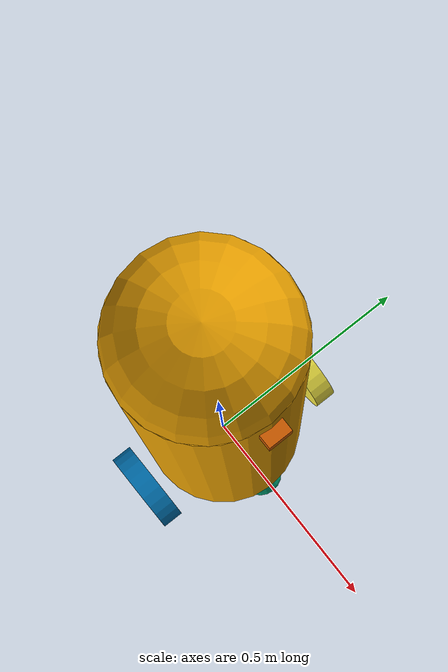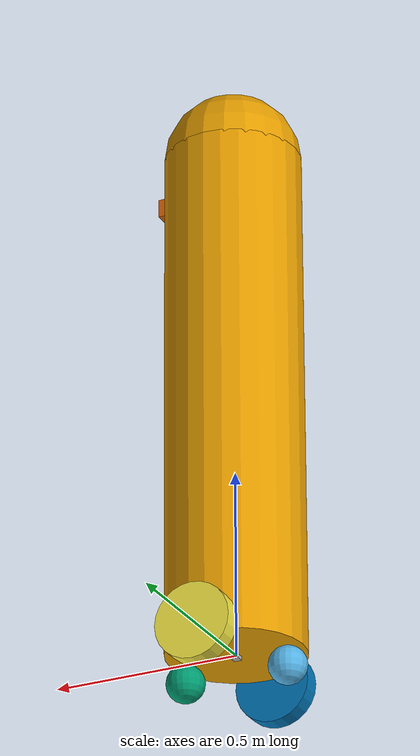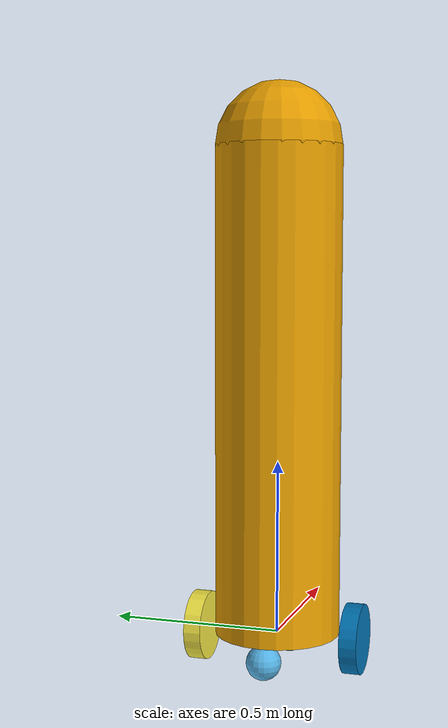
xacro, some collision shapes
<?xml version="1.0"?>
<robot name="museum_navigator_robot"
	xmlns:xacro="http://www.ros.org/wiki/xacro">
	<xacro:property name="cameraSize" value="0.05" />
	<xacro:property name="cameraMass" value="0.1" />

	<material name="black">
		<color rgba="0.0 0.0 0.0 1.0"/>
	</material>

	<material name="blue">
		<color rgba="0.0 0.0 0.8 1.0"/>
	</material>

	<material name="green">
		<color rgba="0.0 0.8 0.0 1.0"/>
	</material>

	<material name="grey">
		<color rgba="0.2 0.2 0.2 1.0"/>
	</material>

	<material name="orange">
		<color rgba="${255/255} ${108/255} ${10/255} 1.0"/>
	</material>

	<material name="brown">
		<color rgba="${222/255} ${207/255} ${195/255} 1.0"/>
	</material>

	<material name="red">
		<color rgba="0.8 0.0 0.0 1.0"/>
	</material>

	<material name="white">
		<color rgba="1.0 1.0 1.0 1.0"/>
	</material>
	<gazebo>
		<plugin filename="libgazebo_ros_joint_state_publisher.so" name="joint_state_publisher">
			<jointName>left_wheel_hinge, right_wheel_hinge</jointName>
			<updateRate>10.0</updateRate>
			<alwaysOn>true</alwaysOn>
		</plugin>
		<plugin name="differential_drive_controller" filename="libgazebo_ros_diff_drive.so">
			<legacyMode>false</legacyMode>
			<alwaysOn>true</alwaysOn>
			<updateRate>10</updateRate>
			<leftJoint>left_wheel_hinge</leftJoint>
			<rightJoint>right_wheel_hinge</rightJoint>
			<wheelSeparation>0.4</wheelSeparation>
			<wheelDiameter>0.2</wheelDiameter>
			<torque>10</torque>
			<commandTopic>cmd_vel</commandTopic>
			<odometryTopic>odom</odometryTopic>
			<odometryFrame>odom</odometryFrame>
			<robotBaseFrame>chassis</robotBaseFrame>
		</plugin>
	</gazebo>
	<gazebo reference="chassis">
		<material name="orange"/>
	</gazebo>
	<gazebo reference="front_caster">
		<mu1>0.0</mu1>
		<mu2>0.0</mu2>
		<material name="grey"/>
	</gazebo>
	<gazebo reference="back_caster">
		<mu1>0.0</mu1>
		<mu2>0.0</mu2>
		<material name="grey"/>
	</gazebo>
	<gazebo reference="left_wheel">
		<material name="black"/>
	</gazebo>
	<gazebo reference="right_wheel">
		<material name="black"/>
	</gazebo>
	<gazebo reference="camera">
		<material name="black"/>
		<sensor type="camera" name="camera1">
			<update_rate>30.0</update_rate>
			<alwaysOn>	true  </alwaysOn>
			<camera name="head_cam">
				<horizontal_fov>	1.62634  </horizontal_fov>
				<image>
					<width>1024</width>
					<height>720</height>
					<format>R8G8B8</format>
				</image>
				<clip>
					<near>0.02</near>
					<far>300</far>
				</clip>
			</camera>
			<plugin name="camera_controller" filename="libgazebo_ros_camera.so">
				<cameraName>	museum_nav/camera1  </cameraName>
				<imageTopicName>	image_raw  </imageTopicName>
				<cameraInfoTopicName>	camera_info  </cameraInfoTopicName>
				<frameName>	camera  </frameName>
				<hackBaseline>	0.07  </hackBaseline>
				<distortionK1>	0.0  </distortionK1>
				<distortionK2>	0.0  </distortionK2>
				<distortionK3>	0.0  </distortionK3>
				<distortionT1>	0.0  </distortionT1>
				<distortionT2>	0.0  </distortionT2>
			</plugin>
		</sensor>
	</gazebo>	<!-- hokuyo -->
	<gazebo reference="hokuyo">
		<sensor type="gpu_ray" name="head_hokuyo_sensor">
			<pose>0 0 0 0 0 0</pose>
			<visualize>true</visualize>
			<update_rate>40</update_rate>
			<ray>
				<scan>
					<horizontal>
						<samples>360</samples>
						<resolution>1</resolution>
						<min_angle>-3.14159</min_angle>
						<max_angle>3.14159</max_angle>
					</horizontal>
				</scan>
				<range>
					<min>		0.25</min>
					<max>		30.0</max>
					<resolution>		0.01</resolution>
				</range>
				<noise>
					<type>		gaussian</type>
					<mean>		0.0</mean>
					<stddev>		0.001</stddev>
				</noise>
			</ray>
			<plugin name="gazebo_ros_head_hokuyo_controller" filename="libgazebo_ros_gpu_laser.so">
				<topicName>	/museum_nav/laser/scan  </topicName>
				<frameName>	hokuyo  </frameName>
			</plugin>
		</sensor>
	</gazebo>
	<gazebo reference="imu_sensor">
		<material name="green"/>
		<gravity>true</gravity>
		<sensor name="imu_sensor" type="imu">
			<always_on>1</always_on>
			<update_rate>1000</update_rate>
			<visualize>1</visualize>
			<topic>__default_topic__</topic>
			<plugin name="imu_plugin" filename="libgazebo_ros_imu_sensor.so">
				<topicName>	imu_data  </topicName>
				<frameName>	imu_sensor  </frameName>
				<bodyName>	imu_sensor  </bodyName>
				<updateRateHZ>	100.0  </updateRateHZ>
				<gaussianNoise>	0.0  </gaussianNoise>
				<xyzOffset>	0 0 0  </xyzOffset>
				<rpyOffset>	0 0 0  </rpyOffset>
			</plugin>
			<pose>0 0 0 0 0 0</pose>
		</sensor>
	</gazebo>
	<gazebo reference="gps">
		<material name="green"/>
		<gravity>true</gravity>
		<sensor name="gps" type="gps">
			<always_on>1</always_on>
			<update_rate>5</update_rate>
			<visualize>1</visualize>
			<topic>__default_topic__</topic>
			<plugin filename="libhector_gazebo_ros_gps.so" name="novatel_gps_sim">
				<bodyName>gps</bodyName>
				<topicName>fix</topicName>
				<velocityTopicName>fix_velocity</velocityTopicName>
				<frameId>gps</frameId>
				<drift>0.0 0.0 0.0</drift>
				<gaussianNoise>0.001 0.001 0.001</gaussianNoise>
				<velocityDrift>0 0 0</velocityDrift>
				<velocityGaussianNoise>0.001 0.001 0.001</velocityGaussianNoise>
				<referenceLatitude>0.0</referenceLatitude>
				<referenceLongitude>0.0</referenceLongitude>
				<referenceHeading>0</referenceHeading>
			</plugin>
			<pose>0 0 0 0 0 0</pose>
		</sensor>
	</gazebo>
	<link name="chassis">
		<pose>
			0 0 0.1 0 0 0
		</pose>
		<collision name="collision">
			<origin xyz="0 0 0" rpy=" 0 0 0" />
			<geometry>
				<box size=".28 .28 .1" />
			</geometry>
		</collision>
		<visual name="chassis_visual">
			<origin xyz="0 0 0.7" rpy=" 0 0 0" />
			<geometry>
				<cylinder radius="0.18" length="1.4" />
			</geometry>
		</visual>
		<collision name="bothead">
			<origin xyz="0 0 1.4" rpy=" 0 0 0" />
			<geometry>
				<sphere radius="0.18" />
			</geometry>
		</collision>
		<visual name="bothead_visual">
			<origin xyz="0 0 1.4" rpy=" 0 0 0" />
			<geometry>
				<sphere radius="0.18" />
			</geometry>
		</visual>
	</link>
	<joint name="back_caster_joint" type="fixed">
		<parent link="chassis" />
		<child link="back_caster" />
		<origin xyz="-0.14 0 -0.05" rpy="0.0 0.0 0.0" />
	</joint>
	<link name="back_caster">
		<inertial>
			<mass value="0.5" />
			<origin xyz="0.0 0 0" rpy=" 0 0 0" />
			<inertia ixx="0.1" ixy="0" ixz="0" iyy="0.1" iyz="0" izz="0.1" />
		</inertial>
		<collision name="back_caster_collision">
			<origin xyz="0 0 0" rpy="0 0 0" />
			<geometry>
				<sphere radius="0.05" />
			</geometry>
		</collision>
		<visual name="back_caster_visual">
			<origin xyz="0 0 0" rpy=" 0 0 0" />
			<geometry>
				<sphere radius="0.05" />
			</geometry>
		</visual>
	</link>
	<joint name="front_caster_joint" type="fixed">
		<parent link="chassis" />
		<child link="front_caster" />
		<origin xyz="0.14 0 -0.05" rpy="0.0 0.0 0.0" />
	</joint>
	<link name="front_caster">
		<inertial>
			<mass value="0.5" />
			<origin xyz="0.0 0 0" rpy=" 0 0 0" />
			<inertia ixx="0.1" ixy="0" ixz="0" iyy="0.1" iyz="0" izz="0.1" />
		</inertial>
		<collision name="front_caster_collision">
			<origin xyz="0 0 0" rpy="0 0 0" />
			<geometry>
				<sphere radius="0.05" />
			</geometry>
		</collision>
		<visual name="front_caster_visual">
			<origin xyz="0 0 0" rpy="0 0 0" />
			<geometry>
				<sphere radius="0.05" />
			</geometry>
		</visual>
	</link>
	<joint type="continuous" name="left_wheel_hinge">
		<origin xyz="0 .23 0" rpy="0 0 0" />
		<child link="left_wheel" />
		<parent link="chassis" />
		<axis xyz="0 1 0" rpy="0 0 0" />
		<limit effort="10000" velocity="1000" />
		<dynamics damping="1.0" friction="1.0" />
	</joint>
	<transmission name="left_wheel_hinge_trans" type="SimpleTransmission">
		<type>
			transmission_interface/SimpleTransmission
		</type>
		<actuator name="left_wheel_hinge_motor">
			<mechanicalReduction>
				1
			</mechanicalReduction>
		</actuator>
		<joint name="left_wheel_hinge">
			<hardwareInterface>
				hardware_interface/VelocityJointInterface
			</hardwareInterface>
		</joint>
	</transmission>
	<link name="left_wheel">
		<inertial>
			<origin xyz="0.0 0.0 0.0" rpy="1.57079632679 0.0 0" />
			<mass value="0.8" />
			<inertia ixx="0.1" ixy="0.0" ixz="0.0" iyy="0.1" iyz="0.0" izz="0.1" />
		</inertial>
		<visual name="left_wheel_visual">
			<origin xyz="0.0 0.0 0.0" rpy="1.57079632679 0.0 0" />
			<geometry>
				<cylinder radius="0.1" length="0.05" />
			</geometry>
		</visual>
		<collision name="left_wheel_collision">
			<origin xyz="0.0 0.0 0.0" rpy="1.57079632679 0.0 0" />
			<geometry>
				<cylinder radius="0.1" length="0.05" />
			</geometry>
		</collision>
	</link>
	<joint type="continuous" name="right_wheel_hinge">
		<origin xyz="0 -.23 0" rpy="0 0 0" />
		<child link="right_wheel" />
		<parent link="chassis" />
		<axis xyz="0 1 0" rpy="0 0 0" />
		<limit effort="10000" velocity="1000" />
		<dynamics damping="1.0" friction="1.0" />
	</joint>
	<transmission name="right_wheel_hinge_trans" type="SimpleTransmission">
		<type>
			transmission_interface/SimpleTransmission
		</type>
		<actuator name="right_wheel_hinge_motor">
			<mechanicalReduction>
				1
			</mechanicalReduction>
		</actuator>
		<joint name="right_wheel_hinge">
			<hardwareInterface>
				hardware_interface/VelocityJointInterface
			</hardwareInterface>
		</joint>
	</transmission>
	<link name="right_wheel">
		<inertial>
			<origin xyz="0.0 0.0 0.0" rpy="1.57079632679 0.0 0" />
			<mass value="0.8" />
			<inertia ixx="0.1" ixy="0.0" ixz="0.0" iyy="0.1" iyz="0.0" izz="0.1" />
		</inertial>
		<visual name="right_wheel_visual">
			<origin xyz="0.0 0.0 0.0" rpy="1.57079632679 0.0 0" />
			<geometry>
				<cylinder radius="0.1" length="0.05" />
			</geometry>
		</visual>
		<collision name="right_wheel_collision">
			<origin xyz="0.0 0.0 0.0" rpy="1.57079632679 0.0 0" />
			<geometry>
				<cylinder radius="0.1" length="0.05" />
			</geometry>
		</collision>
	</link>
	<joint name="camera_joint" type="fixed">
		<parent link="chassis" />
		<child link="camera" />
		<origin xyz="0.18 0.0 1.3" rpy="0.0 0.0 0.0" />
	</joint>
	<link name="camera">
		<inertial>
			<origin xyz="0.0 0.0 0.0" rpy="0.0 0.0 0.0" />
			<mass value="${cameraMass}" />
			<box_inertia m="${cameraMass}" x="${cameraSize}" y="${cameraSize}" z="${cameraSize}" />
			<inertia ixx="1e-6" ixy="0" ixz="0" iyy="1e-6" iyz="0" izz="1e-6" />
		</inertial>
		<visual name="camera_visual">
			<origin xyz="0.0 0.0 0.0" rpy="0.0 0.0 0.0" />
			<geometry>
				<box size="${cameraSize} ${cameraSize} ${cameraSize}" />
			</geometry>
		</visual>
		<collision name="camera_collision">
			<origin xyz="0.0 0.0 0.0" rpy="0.0 0.0 0.0" />
			<geometry>
				<box size="${cameraSize} ${cameraSize} ${cameraSize}" />
			</geometry>
		</collision>
	</link>
	<joint name="hokuyo_joint" type="fixed">
		<parent link="chassis" />
		<child link="hokuyo" />
		<origin xyz="0.0 0.0 0.15" rpy="0.0 0.0 0.0" />
	</joint>
	<link name="hokuyo">
		<inertial>
			<origin xyz="0.0 0.0 0.0" rpy="0.0 0.0 0.0" />
			<mass value="1e-5" />
			<inertia ixx="1e-6" ixy="0.0" ixz="0.0" iyy="1e-6" iyz="0.0" izz="1e-6" />
		</inertial>
		<visual name="hokuyo_visual">
			<origin xyz="0.0 0.0 0.0" rpy="0.0 0.0 0.0" />
			<geometry>
				<mesh filename="package://diff_drive_bot/meshes/hokuyo.dae" />
			</geometry>
		</visual>
		<collision name="hokuyo_collision">
			<origin xyz="0.0 0.0 0.0" rpy="0.0 0.0 0.0" />
			<geometry>
				<box size="0.05 0.05 0.05" />
			</geometry>
		</collision>
	</link>
	<joint name="imu_joint" type="fixed">
		<axis xyz="0 0 1" />
		<origin xyz="0 0 0" rpy="0 0 0" />
		<parent link="chassis" />
		<child link="imu_sensor" />
	</joint>
	<link name="imu_sensor">
		<collision>
			<origin xyz="0 0 0" rpy="0 0 0" />
			<geometry>
				<box size="0.02 0.02 0.02" />
			</geometry>
		</collision>
		<visual>
			<origin xyz="0 0 0" rpy="0 0 0" />
			<geometry>
				<box size="0.02 0.02 0.02" />
			</geometry>
		</visual>
		<inertial>
			<mass value="0.001" />
			<origin xyz="0 0 0" rpy="0 0 0" />
			<inertia ixx="0.00000015" ixy="0" ixz="0" iyy="0.00000015" iyz="0" izz="0.00000015" />
		</inertial>
	</link>
	<joint name="gps_joint" type="fixed">
		<axis xyz="0 0 1" />
		<origin xyz="0 0 0" rpy="0 0 0" />
		<parent link="chassis" />
		<child link="gps" />
	</joint>
	<link name="gps">
		<collision>
			<origin xyz="0 0 0" rpy="0 0 0" />
			<geometry>
				<box size="0.02 0.02 0.02" />
			</geometry>
		</collision>
		<visual>
			<origin xyz="0 0 0" rpy="0 0 0" />
			<geometry>
				<box size="0.02 0.02 0.02" />
			</geometry>
		</visual>
		<inertial>
			<mass value="0.001" />
			<origin xyz="0 0 0" rpy="0 0 0" />
			<inertia ixx="0.00000015" ixy="0" ixz="0" iyy="0.00000015" iyz="0" izz="0.00000015" />
		</inertial>
	</link>

</robot>
